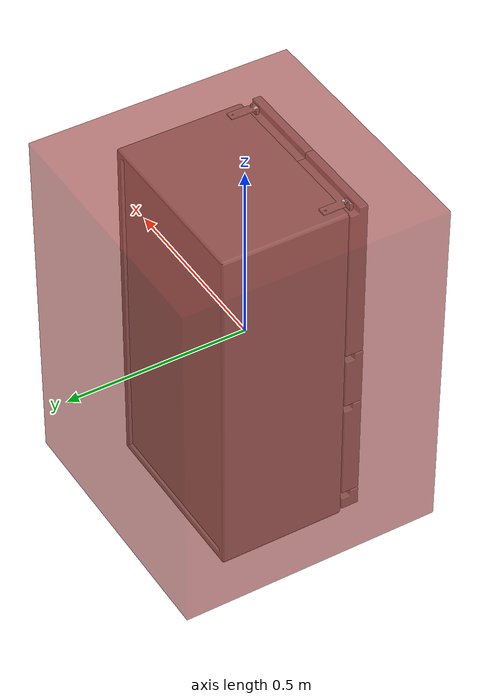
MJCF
<mujoco model="model">
  <asset>
    <texture file="visuals/material_0.png" name="tex-model" type="2d"/>
    <texture type="2d" name="image9" file="visuals/image9.png"/>
    <texture type="2d" name="image13" file="visuals/image13.png"/>
    <material name="model" reflectance="0.5" texrepeat="1 1" texture="tex-model" texuniform="false"/>
    <material name="TX_Dishwasher_3_1" texture="image9" specular="0.5" shininess="0.25"/>
    <material name="TX_Dishwasher_3_2" texture="image13" specular="0.5" shininess="0.25"/>
    <mesh file="visuals/model_0.obj" name="model_0_vis" scale="1 1 1"/>
    <mesh file="visuals/model_1.obj" name="model_1_vis" scale="1 1 1"/>
  </asset>
  <default>
    <default class="visual">
      <geom conaffinity="0" contype="0" group="1" type="mesh"/>
    </default>
    <default class="collision">
      <geom group="0" rgba="0.5 0 0 0.5"/>
    </default>
    <default class="region">
      <geom group="1" conaffinity="0" contype="0" rgba="0 1 0 0"/>
    </default>
  </default>
  <worldbody>
    <body>
      <!-- exterior bounding box points -->
      <!-- interior bounding box points -->
      <body name="object">
        <geom solimp="0.998 0.998 0.001" solref="0.001 1" density="100" friction="0.95 0.3 0.1" type="mesh" mesh="model_0_vis" material="TX_Dishwasher_3_2" class="visual"/>
        <geom solimp="0.998 0.998 0.001" solref="0.001 1" density="100" friction="0.95 0.3 0.1" type="mesh" mesh="model_1_vis" material="TX_Dishwasher_3_1" class="visual"/>
        <geom class="collision" type="box" pos="0 0.022 0" size="0.36604551004394775 0.363 0.5"/>
        <geom class="region" name="reg_main" type="box" pos="0.0 0.021019382408928866 0.0" size="0.36604551004394775 0.3620193824089289 0.5"/>
      </body>
    </body>
  </worldbody>
</mujoco>
